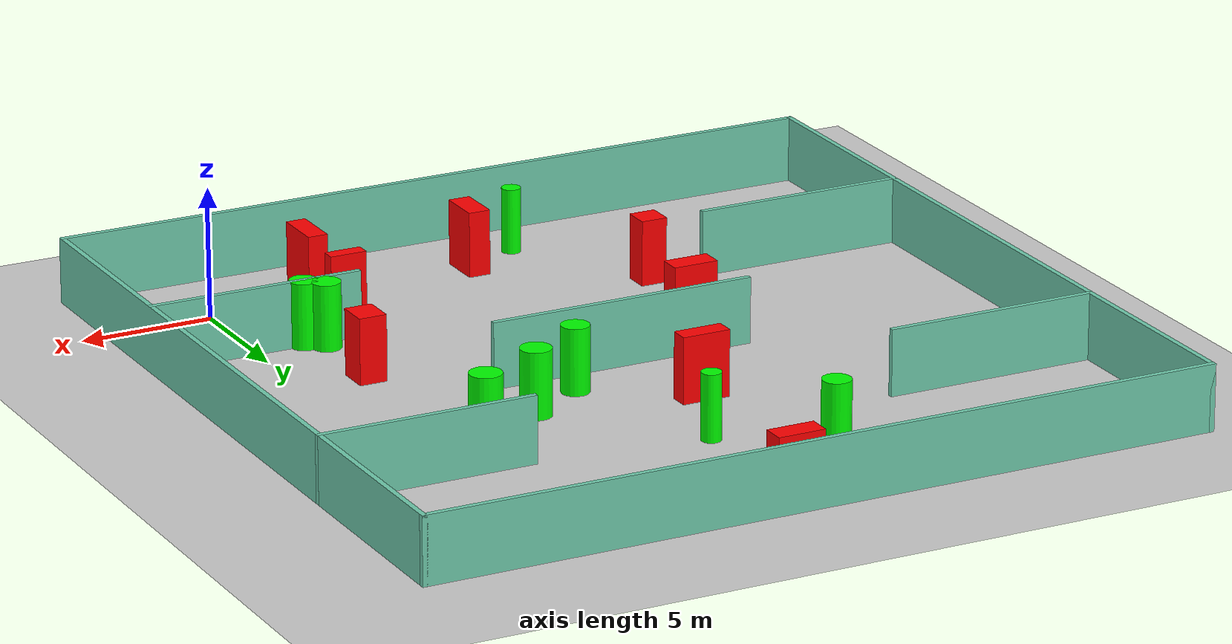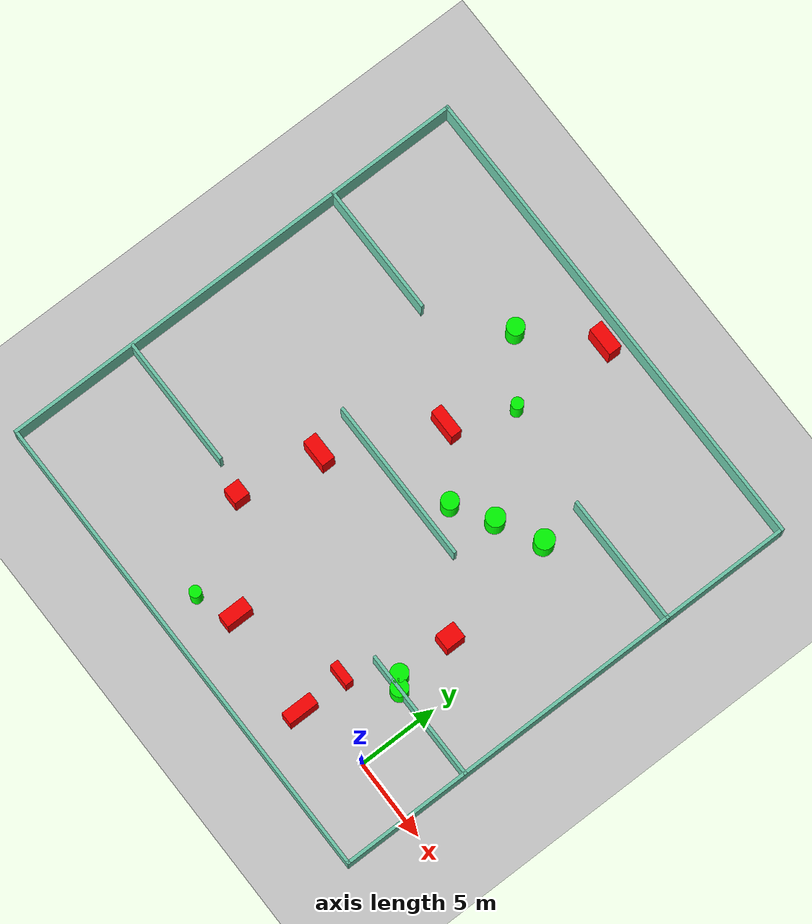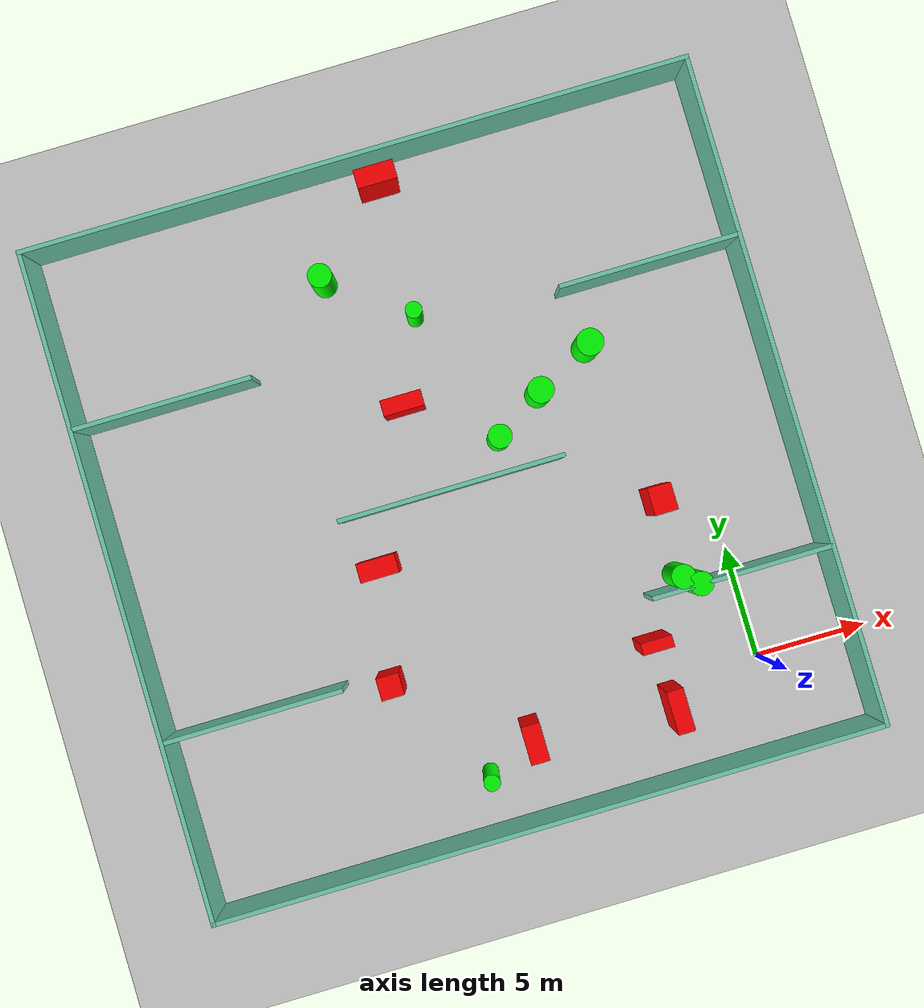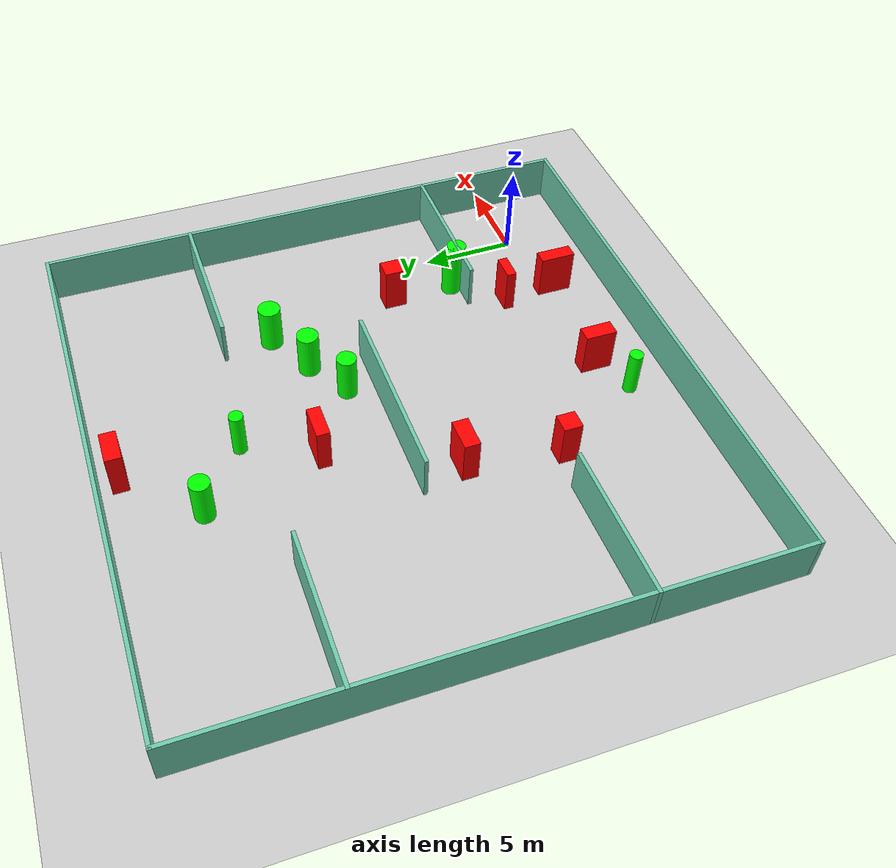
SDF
<sdf version="1.7">
 <world name="default">
  <light name="sun" type="directional">
   <pose>0 0 10 0 -0 0</pose>
   <diffuse>0.8 0.8 0.8 1</diffuse>
   <specular>0.2 0.2 0.2 1</specular>
   <attenuation>
    <range>1000</range>
    <constant>0.9</constant>
    <linear>0.01</linear>
    <quadratic>0.001</quadratic>
   </attenuation>
   <direction>-0.5 0.1 -0.9</direction>
   <spot><inner_angle>0</inner_angle><outer_angle>0</outer_angle><falloff>0</falloff></spot>
  </light>
  <model name="ground_plane">
   <static>1</static>
   <link name="link">
    <collision name="collision">
     <geometry><plane><normal>0 0 1</normal><size>100 100</size></plane></geometry>
     <surface>
      <contact><collide_bitmask>65535</collide_bitmask></contact>
      <friction><ode><mu>100</mu><mu2>50</mu2></ode></friction>
     </surface>
    </collision>
    <visual name="visual">
     <cast_shadows>0</cast_shadows>
     <geometry><plane><normal>0 0 1</normal><size>100 100</size></plane></geometry>
     <material>
      <script><uri>file://media/materials/scripts/gazebo.material</uri><name>Gazebo/Grey</name></script>
     </material>
    </visual>
   </link>
  </model>
  <gravity>0 0 -9.8</gravity>
  <magnetic_field>6e-06 2.3e-05 -4.2e-05</magnetic_field>
  <atmosphere type="adiabatic"/>
  <physics type="ode">
   <max_step_size>0.001</max_step_size>
   <real_time_factor>1</real_time_factor>
   <real_time_update_rate>1000</real_time_update_rate>
  </physics>
  <scene><ambient>0.4 0.4 0.4 1</ambient><background>0.7 0.7 0.7 1</background><shadows>1</shadows></scene>
  <spherical_coordinates>
   <surface_model>EARTH_WGS84</surface_model>
   <latitude_deg>0</latitude_deg>
   <longitude_deg>0</longitude_deg>
   <elevation>0</elevation>
   <heading_deg>0</heading_deg>
  </spherical_coordinates>
  <model name="my_base_walls">
   <link name="Wall_10">
    <collision name="Wall_10_Collision">
     <geometry><box><size>8.2 0.2 2.5</size></box></geometry>
     <pose>0 0 1.25 0 -0 0</pose>
    </collision>
    <visual name="Wall_10_Visual">
     <pose>0 0 1.25 0 -0 0</pose>
     <geometry><box><size>8.2 0.2 2.5</size></box></geometry>
     <material>
      <script><uri>file://media/materials/scripts/gazebo.material</uri><name>Gazebo/Grey</name></script>
      <ambient>0.435294 0.796078 0.67451 1</ambient>
     </material>
     <meta><layer>0</layer></meta>
    </visual>
    <pose>-11 -7 0 0 -0 0</pose>
   </link>
   <link name="Wall_12">
    <collision name="Wall_12_Collision">
     <geometry><box><size>8.2 0.2 2.5</size></box></geometry>
     <pose>0 0 1.25 0 -0 0</pose>
    </collision>
    <visual name="Wall_12_Visual">
     <pose>0 0 1.25 0 -0 0</pose>
     <geometry><box><size>8.2 0.2 2.5</size></box></geometry>
     <material>
      <script><uri>file://media/materials/scripts/gazebo.material</uri><name>Gazebo/Grey</name></script>
      <ambient>0.435294 0.796078 0.67451 1</ambient>
     </material>
     <meta><layer>0</layer></meta>
    </visual>
    <pose>-11 7 0 0 -0 0</pose>
   </link>
   <link name="Wall_14">
    <collision name="Wall_14_Collision">
     <geometry><box><size>8.2 0.2 2.5</size></box></geometry>
     <pose>0 0 1.25 0 -0 0</pose>
    </collision>
    <visual name="Wall_14_Visual">
     <pose>0 0 1.25 0 -0 0</pose>
     <geometry><box><size>8.2 0.2 2.5</size></box></geometry>
     <material>
      <script><uri>file://media/materials/scripts/gazebo.material</uri><name>Gazebo/Grey</name></script>
      <ambient>0.435294 0.796078 0.67451 1</ambient>
     </material>
     <meta><layer>0</layer></meta>
    </visual>
    <pose>11 7 0 0 -0 3.14159</pose>
   </link>
   <link name="Wall_16">
    <collision name="Wall_16_Collision">
     <geometry><box><size>10.2 0.2 2.5</size></box></geometry>
     <pose>0 0 1.25 0 -0 0</pose>
    </collision>
    <visual name="Wall_16_Visual">
     <pose>0 0 1.25 0 -0 0</pose>
     <geometry><box><size>10.2 0.2 2.5</size></box></geometry>
     <material>
      <script><uri>file://media/materials/scripts/gazebo.material</uri><name>Gazebo/Grey</name></script>
      <ambient>0.435294 0.796078 0.67451 1</ambient>
     </material>
     <meta><layer>0</layer></meta>
    </visual>
    <pose>0 0 0 0 -0 3.14159</pose>
   </link>
   <link name="Wall_2">
    <collision name="Wall_2_Collision">
     <geometry><box><size>30.2 0.2 2.5</size></box></geometry>
     <pose>0 0 1.25 0 -0 0</pose>
    </collision>
    <visual name="Wall_2_Visual">
     <pose>0 0 1.25 0 -0 0</pose>
     <geometry><box><size>30.2 0.2 2.5</size></box></geometry>
     <material>
      <script><uri>file://media/materials/scripts/gazebo.material</uri><name>Gazebo/Grey</name></script>
      <ambient>0.435294 0.796078 0.67451 1</ambient>
     </material>
     <meta><layer>0</layer></meta>
    </visual>
    <pose>0 -15 0 0 -0 3.14159</pose>
   </link>
   <link name="Wall_3">
    <collision name="Wall_3_Collision">
     <geometry><box><size>30.2 0.2 2.5</size></box></geometry>
     <pose>0 0 1.25 0 -0 0</pose>
    </collision>
    <visual name="Wall_3_Visual">
     <pose>0 0 1.25 0 -0 0</pose>
     <geometry><box><size>30.2 0.2 2.5</size></box></geometry>
     <material>
      <script><uri>file://media/materials/scripts/gazebo.material</uri><name>Gazebo/Grey</name></script>
      <ambient>0.435294 0.796078 0.67451 1</ambient>
     </material>
     <meta><layer>0</layer></meta>
    </visual>
    <pose>-15 0 0 0 -0 1.5708</pose>
   </link>
   <link name="Wall_4">
    <collision name="Wall_4_Collision">
     <geometry><box><size>30.2 0.2 2.5</size></box></geometry>
     <pose>0 0 1.25 0 -0 0</pose>
    </collision>
    <visual name="Wall_4_Visual">
     <pose>0 0 1.25 0 -0 0</pose>
     <geometry><box><size>30.2 0.2 2.5</size></box></geometry>
     <material>
      <script><uri>file://media/materials/scripts/gazebo.material</uri><name>Gazebo/Grey</name></script>
      <ambient>0.435294 0.796078 0.67451 1</ambient>
     </material>
     <meta><layer>0</layer></meta>
    </visual>
    <pose>0 15 0 0 -0 0</pose>
   </link>
   <link name="Wall_6">
    <collision name="Wall_6_Collision">
     <geometry><box><size>30.2 0.2 2.5</size></box></geometry>
     <pose>0 0 1.25 0 -0 0</pose>
    </collision>
    <visual name="Wall_6_Visual">
     <pose>0 0 1.25 0 -0 0</pose>
     <geometry><box><size>30.2 0.2 2.5</size></box></geometry>
     <material>
      <script><uri>file://media/materials/scripts/gazebo.material</uri><name>Gazebo/Grey</name></script>
      <ambient>0.435294 0.796078 0.67451 1</ambient>
     </material>
     <meta><layer>0</layer></meta>
    </visual>
    <pose>15 0 0 0 -0 1.5708</pose>
   </link>
   <link name="Wall_8">
    <collision name="Wall_8_Collision">
     <geometry><box><size>8.2 0.2 2.5</size></box></geometry>
     <pose>0 0 1.25 0 -0 0</pose>
    </collision>
    <visual name="Wall_8_Visual">
     <pose>0 0 1.25 0 -0 0</pose>
     <geometry><box><size>8.2 0.2 2.5</size></box></geometry>
     <material>
      <script><uri>file://media/materials/scripts/gazebo.material</uri><name>Gazebo/Grey</name></script>
      <ambient>0.435294 0.796078 0.67451 1</ambient>
     </material>
     <meta><layer>0</layer></meta>
    </visual>
    <pose>11 -7 0 0 -0 3.14159</pose>
   </link>
   <static>1</static>
   <pose>-11 11 0 0 -0 0</pose>
  </model>
  <model name="cylinder1">
   <static>1</static>
   <link name="link">
    <inertial>
     <mass>1</mass>
     <inertia><ixx>0.5</ixx><ixy>0</ixy><ixz>0</ixz><iyy>0.5</iyy><iyz>0</iyz><izz>1</izz></inertia>
    </inertial>
    <collision name="collision">
     <geometry><cylinder><radius>0.5335546858079571</radius><length>2.5</length></cylinder></geometry>
    </collision>
    <visual name="visual">
     <geometry><cylinder><radius>0.5335546858079571</radius><length>2.5</length></cylinder></geometry>
     <material>
      <ambient>0 1 0 1</ambient>
      <diffuse>0 1 0 1</diffuse>
      <specular>0.1 0.1 0.1 1</specular>
      <emissive>0 0 0 0</emissive>
     </material>
    </visual>
   </link>
   <pose>-13.857771414124826 21.375593759170187 1.25 0 0 0</pose>
  </model>
  <model name="cylinder2">
   <static>1</static>
   <link name="link">
    <inertial>
     <mass>1</mass>
     <inertia><ixx>0.5</ixx><ixy>0</ixy><ixz>0</ixz><iyy>0.5</iyy><iyz>0</iyz><izz>1</izz></inertia>
    </inertial>
    <collision name="collision">
     <geometry><cylinder><radius>0.3692879898405351</radius><length>2.5</length></cylinder></geometry>
    </collision>
    <visual name="visual">
     <geometry><cylinder><radius>0.3692879898405351</radius><length>2.5</length></cylinder></geometry>
     <material>
      <ambient>0 1 0 1</ambient>
      <diffuse>0 1 0 1</diffuse>
      <specular>0.1 0.1 0.1 1</specular>
      <emissive>0 0 0 0</emissive>
     </material>
    </visual>
   </link>
   <pose>-10.39068596545902 18.80744945194479 1.25 0 0 0</pose>
  </model>
  <model name="cylinder3">
   <static>1</static>
   <link name="link">
    <inertial>
     <mass>1</mass>
     <inertia><ixx>0.5</ixx><ixy>0</ixy><ixz>0</ixz><iyy>0.5</iyy><iyz>0</iyz><izz>1</izz></inertia>
    </inertial>
    <collision name="collision">
     <geometry><cylinder><radius>0.5367541858836347</radius><length>2.5</length></cylinder></geometry>
    </collision>
    <visual name="visual">
     <geometry><cylinder><radius>0.5367541858836347</radius><length>2.5</length></cylinder></geometry>
     <material>
      <ambient>0 1 0 1</ambient>
      <diffuse>0 1 0 1</diffuse>
      <specular>0.1 0.1 0.1 1</specular>
      <emissive>0 0 0 0</emissive>
     </material>
    </visual>
   </link>
   <pose>-2.523656865465064 4.530313122118263 1.25 0 0 0</pose>
  </model>
  <model name="cylinder4">
   <static>1</static>
   <link name="link">
    <inertial>
     <mass>1</mass>
     <inertia><ixx>0.5</ixx><ixy>0</ixy><ixz>0</ixz><iyy>0.5</iyy><iyz>0</iyz><izz>1</izz></inertia>
    </inertial>
    <collision name="collision">
     <geometry><cylinder><radius>0.3639763192249844</radius><length>2.5</length></cylinder></geometry>
    </collision>
    <visual name="visual">
     <geometry><cylinder><radius>0.3639763192249844</radius><length>2.5</length></cylinder></geometry>
     <material>
      <ambient>0 1 0 1</ambient>
      <diffuse>0 1 0 1</diffuse>
      <specular>0.1 0.1 0.1 1</specular>
      <emissive>0 0 0 0</emissive>
     </material>
    </visual>
   </link>
   <pose>-12.894110628765368 -1.5826259668472207 1.25 0 0 0</pose>
  </model>
  <model name="cylinder5">
   <static>1</static>
   <link name="link">
    <inertial>
     <mass>1</mass>
     <inertia><ixx>0.5</ixx><ixy>0</ixy><ixz>0</ixz><iyy>0.5</iyy><iyz>0</iyz><izz>1</izz></inertia>
    </inertial>
    <collision name="collision">
     <geometry><cylinder><radius>0.603443954096574</radius><length>2.5</length></cylinder></geometry>
    </collision>
    <visual name="visual">
     <geometry><cylinder><radius>0.603443954096574</radius><length>2.5</length></cylinder></geometry>
     <material>
      <ambient>0 1 0 1</ambient>
      <diffuse>0 1 0 1</diffuse>
      <specular>0.1 0.1 0.1 1</specular>
      <emissive>0 0 0 0</emissive>
     </material>
    </visual>
   </link>
   <pose>-3.5034256460821958 15.336960579757914 1.25 0 0 0</pose>
  </model>
  <model name="cylinder6">
   <static>1</static>
   <link name="link">
    <inertial>
     <mass>1</mass>
     <inertia><ixx>0.5</ixx><ixy>0</ixy><ixz>0</ixz><iyy>0.5</iyy><iyz>0</iyz><izz>1</izz></inertia>
    </inertial>
    <collision name="collision">
     <geometry><cylinder><radius>0.5836669745382679</radius><length>2.5</length></cylinder></geometry>
    </collision>
    <visual name="visual">
     <geometry><cylinder><radius>0.5836669745382679</radius><length>2.5</length></cylinder></geometry>
     <material>
      <ambient>0 1 0 1</ambient>
      <diffuse>0 1 0 1</diffuse>
      <specular>0.1 0.1 0.1 1</specular>
      <emissive>0 0 0 0</emissive>
     </material>
    </visual>
   </link>
   <pose>-6.114223121052145 13.958170931360549 1.25 0 0 0</pose>
  </model>
  <model name="cylinder7">
   <static>1</static>
   <link name="link">
    <inertial>
     <mass>1</mass>
     <inertia><ixx>0.5</ixx><ixy>0</ixy><ixz>0</ixz><iyy>0.5</iyy><iyz>0</iyz><izz>1</izz></inertia>
    </inertial>
    <collision name="collision">
     <geometry><cylinder><radius>0.5276293540877872</radius><length>2.5</length></cylinder></geometry>
    </collision>
    <visual name="visual">
     <geometry><cylinder><radius>0.5276293540877872</radius><length>2.5</length></cylinder></geometry>
     <material>
      <ambient>0 1 0 1</ambient>
      <diffuse>0 1 0 1</diffuse>
      <specular>0.1 0.1 0.1 1</specular>
      <emissive>0 0 0 0</emissive>
     </material>
    </visual>
   </link>
   <pose>-8.364017436484605 12.539122970309057 1.25 0 0 0</pose>
  </model>
  <model name="cylinder8">
   <static>1</static>
   <link name="link">
    <inertial>
     <mass>1</mass>
     <inertia><ixx>0.5</ixx><ixy>0</ixy><ixz>0</ixz><iyy>0.5</iyy><iyz>0</iyz><izz>1</izz></inertia>
    </inertial>
    <collision name="collision">
     <geometry><cylinder><radius>0.533276418599637</radius><length>2.5</length></cylinder></geometry>
    </collision>
    <visual name="visual">
     <geometry><cylinder><radius>0.533276418599637</radius><length>2.5</length></cylinder></geometry>
     <material>
      <ambient>0 1 0 1</ambient>
      <diffuse>0 1 0 1</diffuse>
      <specular>0.1 0.1 0.1 1</specular>
      <emissive>0 0 0 0</emissive>
     </material>
    </visual>
   </link>
   <pose>-1.8721209727267265 4.0340756553144175 1.25 0 0 0</pose>
  </model>
  <model name="box1">
   <static>1</static>
   <link name="link">
    <inertial>
     <mass>1</mass>
     <inertia><ixx>0.083</ixx><ixy>0</ixy><ixz>0</ixz><iyy>0.083</iyy><iyz>0</iyz><izz>0.083</izz></inertia>
    </inertial>
    <collision name="collision">
     <geometry><box><size>1.0515815203133014 1.2304049994154362 2.5</size></box></geometry>
    </collision>
    <visual name="visual">
     <geometry><box><size>1.0515815203133014 1.2304049994154362 2.5</size></box></geometry>
     <material>
      <ambient>1 0 0 1</ambient>
      <diffuse>1 0 0 1</diffuse>
      <specular>0.1 0.1 0.1 1</specular>
      <emissive>0 0 0 0</emissive>
     </material>
    </visual>
    <sensor name="my_contact" type="contact">
     <contact><collision>box_collision</collision><topic>__default_topic__</topic></contact>
    </sensor>
   </link>
   <pose>-2.4382198354407194 7.977866630568835 1.25 0 0 0</pose>
  </model>
  <model name="box2">
   <static>1</static>
   <link name="link">
    <inertial>
     <mass>1</mass>
     <inertia><ixx>0.083</ixx><ixy>0</ixy><ixz>0</ixz><iyy>0.083</iyy><iyz>0</iyz><izz>0.083</izz></inertia>
    </inertial>
    <collision name="collision">
     <geometry><box><size>0.8429295772105678 1.694257028799964 2.5</size></box></geometry>
    </collision>
    <visual name="visual">
     <geometry><box><size>0.8429295772105678 1.694257028799964 2.5</size></box></geometry>
     <material>
      <ambient>1 0 0 1</ambient>
      <diffuse>1 0 0 1</diffuse>
      <specular>0.1 0.1 0.1 1</specular>
      <emissive>0 0 0 0</emissive>
     </material>
    </visual>
    <sensor name="my_contact" type="contact">
     <contact><collision>box_collision</collision><topic>__default_topic__</topic></contact>
    </sensor>
   </link>
   <pose>-10.654743210732263 -0.5204814374537658 1.25 0 0 0</pose>
  </model>
  <model name="box3">
   <static>1</static>
   <link name="link">
    <inertial>
     <mass>1</mass>
     <inertia><ixx>0.083</ixx><ixy>0</ixy><ixz>0</ixz><iyy>0.083</iyy><iyz>0</iyz><izz>0.083</izz></inertia>
    </inertial>
    <collision name="collision">
     <geometry><box><size>1.8203836354664322 0.7044455608059451 2.5</size></box></geometry>
    </collision>
    <visual name="visual">
     <geometry><box><size>1.8203836354664322 0.7044455608059451 2.5</size></box></geometry>
     <material>
      <ambient>1 0 0 1</ambient>
      <diffuse>1 0 0 1</diffuse>
      <specular>0.1 0.1 0.1 1</specular>
      <emissive>0 0 0 0</emissive>
     </material>
    </visual>
    <sensor name="my_contact" type="contact">
     <contact><collision>box_collision</collision><topic>__default_topic__</topic></contact>
    </sensor>
   </link>
   <pose>-11.99961216715487 15.105096356561976 1.25 0 0 0</pose>
  </model>
  <model name="box4">
   <static>1</static>
   <link name="link">
    <inertial>
     <mass>1</mass>
     <inertia><ixx>0.083</ixx><ixy>0</ixy><ixz>0</ixz><iyy>0.083</iyy><iyz>0</iyz><izz>0.083</izz></inertia>
    </inertial>
    <collision name="collision">
     <geometry><box><size>1.7211748100823654 0.8478526308026413 2.5</size></box></geometry>
    </collision>
    <visual name="visual">
     <geometry><box><size>1.7211748100823654 0.8478526308026413 2.5</size></box></geometry>
     <material>
      <ambient>1 0 0 1</ambient>
      <diffuse>1 0 0 1</diffuse>
      <specular>0.1 0.1 0.1 1</specular>
      <emissive>0 0 0 0</emissive>
     </material>
    </visual>
    <sensor name="my_contact" type="contact">
     <contact><collision>box_collision</collision><topic>__default_topic__</topic></contact>
    </sensor>
   </link>
   <pose>-15.017569436411321 8.586006264531026 1.25 0 0 0</pose>
  </model>
  <model name="box5">
   <static>1</static>
   <link name="link">
    <inertial>
     <mass>1</mass>
     <inertia><ixx>0.083</ixx><ixy>0</ixy><ixz>0</ixz><iyy>0.083</iyy><iyz>0</iyz><izz>0.083</izz></inertia>
    </inertial>
    <collision name="collision">
     <geometry><box><size>1.4029153643141252 0.5318650255832686 2.5</size></box></geometry>
    </collision>
    <visual name="visual">
     <geometry><box><size>1.4029153643141252 0.5318650255832686 2.5</size></box></geometry>
     <material>
      <ambient>1 0 0 1</ambient>
      <diffuse>1 0 0 1</diffuse>
      <specular>0.1 0.1 0.1 1</specular>
      <emissive>0 0 0 0</emissive>
     </material>
    </visual>
    <sensor name="my_contact" type="contact">
     <contact><collision>box_collision</collision><topic>__default_topic__</topic></contact>
    </sensor>
   </link>
   <pose>-4.444500691524915 2.0373129421203497 1.25 0 0 0</pose>
  </model>
  <model name="box6">
   <static>1</static>
   <link name="link">
    <inertial>
     <mass>1</mass>
     <inertia><ixx>0.083</ixx><ixy>0</ixy><ixz>0</ixz><iyy>0.083</iyy><iyz>0</iyz><izz>0.083</izz></inertia>
    </inertial>
    <collision name="collision">
     <geometry><box><size>1.780275400461204 0.8386386838944184 2.5</size></box></geometry>
    </collision>
    <visual name="visual">
     <geometry><box><size>1.780275400461204 0.8386386838944184 2.5</size></box></geometry>
     <material>
      <ambient>1 0 0 1</ambient>
      <diffuse>1 0 0 1</diffuse>
      <specular>0.1 0.1 0.1 1</specular>
      <emissive>0 0 0 0</emissive>
     </material>
    </visual>
    <sensor name="my_contact" type="contact">
     <contact><collision>box_collision</collision><topic>__default_topic__</topic></contact>
    </sensor>
   </link>
   <pose>-10.32713941663011 24.913660731167308 1.25 0 0 0</pose>
  </model>
  <model name="box7">
   <static>1</static>
   <link name="link">
    <inertial>
     <mass>1</mass>
     <inertia><ixx>0.083</ixx><ixy>0</ixy><ixz>0</ixz><iyy>0.083</iyy><iyz>0</iyz><izz>0.083</izz></inertia>
    </inertial>
    <collision name="collision">
     <geometry><box><size>1.0093168480326336 0.9941499882805307 2.5</size></box></geometry>
    </collision>
    <visual name="visual">
     <geometry><box><size>1.0093168480326336 0.9941499882805307 2.5</size></box></geometry>
     <material>
      <ambient>1 0 0 1</ambient>
      <diffuse>1 0 0 1</diffuse>
      <specular>0.1 0.1 0.1 1</specular>
      <emissive>0 0 0 0</emissive>
     </material>
    </visual>
    <sensor name="my_contact" type="contact">
     <contact><collision>box_collision</collision><topic>__default_topic__</topic></contact>
    </sensor>
   </link>
   <pose>-15.925101498425494 3.572846175656939 1.25 0 0 0</pose>
  </model>
  <model name="box8">
   <static>1</static>
   <link name="link">
    <inertial>
     <mass>1</mass>
     <inertia><ixx>0.083</ixx><ixy>0</ixy><ixz>0</ixz><iyy>0.083</iyy><iyz>0</iyz><izz>0.083</izz></inertia>
    </inertial>
    <collision name="collision">
     <geometry><box><size>0.7617679926300479 1.912071672052047 2.5</size></box></geometry>
    </collision>
    <visual name="visual">
     <geometry><box><size>0.7617679926300479 1.912071672052047 2.5</size></box></geometry>
     <material>
      <ambient>1 0 0 1</ambient>
      <diffuse>1 0 0 1</diffuse>
      <specular>0.1 0.1 0.1 1</specular>
      <emissive>0 0 0 0</emissive>
     </material>
    </visual>
    <sensor name="my_contact" type="contact">
     <contact><collision>box_collision</collision><topic>__default_topic__</topic></contact>
    </sensor>
   </link>
   <pose>-4.294083808655213 -0.9531574996337961 1.25 0 0 0</pose>
  </model>
 </world>
</sdf>
